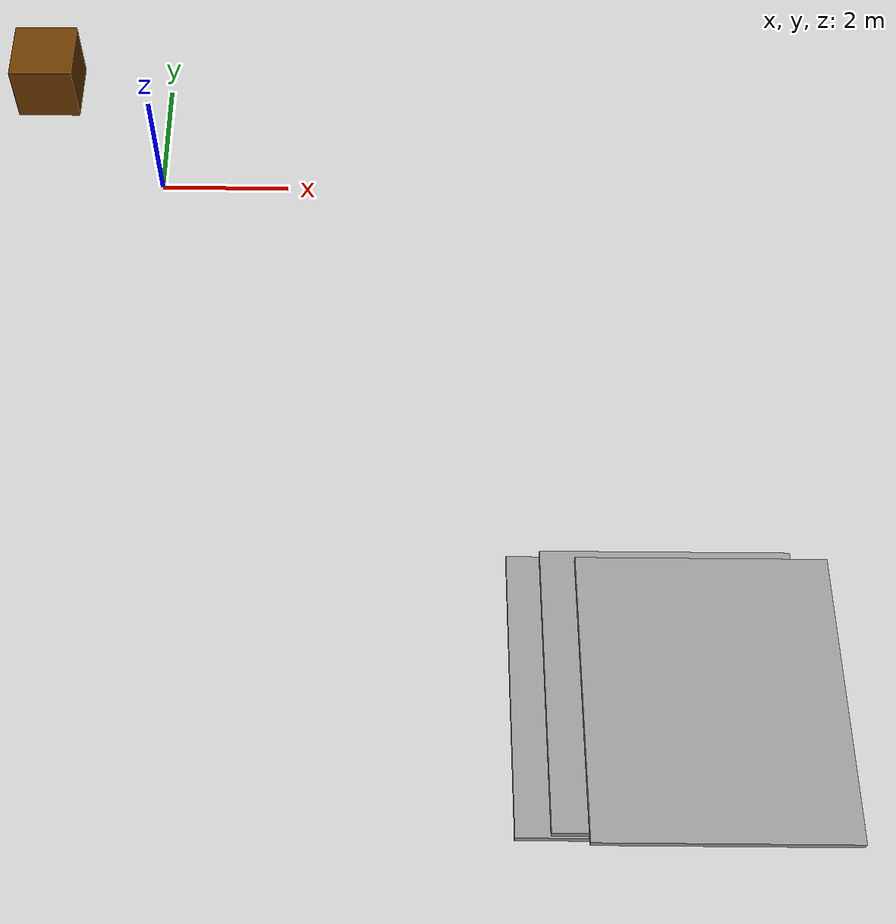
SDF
<sdf version="1.7">
 <world name="default">
  <model name="ground_plane">
   <static>1</static>
   <link name="link">
    <collision name="collision">
     <geometry><plane><normal>0 0 1</normal><size>100 100</size></plane></geometry>
     <surface><friction><ode><mu>100</mu><mu2>50</mu2></ode></friction></surface>
    </collision>
    <visual name="visual">
     <cast_shadows>0</cast_shadows>
     <geometry><plane><normal>0 0 1</normal><size>100 100</size></plane></geometry>
     <material>
      <script><uri>file://media/materials/scripts/gazebo.material</uri><name>Gazebo/Grey</name></script>
     </material>
    </visual>
   </link>
  </model>
  <model name="static_environment">
   <static>1</static>
   <link name="static_box">
    <pose>-2 2 0.5 0 -0 0</pose>
    <collision name="static_box_collision"><geometry><box><size>1 1 1</size></box></geometry></collision>
    <visual name="static_box_visual">
     <geometry><box><size>1 1 1</size></box></geometry>
     <material><ambient>0.2 0.2 0.2 1</ambient><diffuse>0.421 0.225 0 1</diffuse></material>
    </visual>
   </link>
  </model>
  <model name="Untitled_0">
   <link name="link_0">
    <inertial>
     <mass>1.68503</mass>
     <inertia><ixx>2.15864</ixx><ixy>0</ixy><ixz>0</ixz><iyy>1.66859</iyy><iyz>0</iyz><izz>3.82285</izz></inertia>
    </inertial>
    <pose>-0.45963 0.03371 -0.129963 0 -0 0</pose>
    <visual name="visual">
     <geometry><box><size>3.4449 3.91883 0.12488</size></box></geometry>
     <material>
      <lighting>1</lighting>
      <script><uri>file://media/materials/scripts/gazebo.material</uri><name>Gazebo/Grey</name></script>
      <shader type="pixel"/>
     </material>
    </visual>
    <collision name="collision">
     <geometry><box><size>3.4449 3.91883 0.12488</size></box></geometry>
     <surface>
      <friction>
       <ode><mu>1</mu><mu2>1</mu2><fdir1>0 0 0</fdir1><slip1>0</slip1><slip2>0</slip2></ode>
       <torsional>
        <coefficient>1</coefficient>
        <patch_radius>0</patch_radius>
        <surface_radius>0</surface_radius>
        <use_patch_radius>1</use_patch_radius>
        <ode><slip>0</slip></ode>
       </torsional>
      </friction>
      <bounce><restitution_coefficient>0</restitution_coefficient><threshold>1e+06</threshold></bounce>
      <contact>
       <collide_without_contact>0</collide_without_contact>
       <collide_without_contact_bitmask>1</collide_without_contact_bitmask>
       <collide_bitmask>1</collide_bitmask>
       <ode>
        <soft_cfm>0</soft_cfm>
        <soft_erp>0.2</soft_erp>
        <kp>1e+13</kp>
        <kd>1</kd>
        <max_vel>0.01</max_vel>
        <min_depth>0</min_depth>
       </ode>
       <bullet>
        <split_impulse>1</split_impulse>
        <split_impulse_penetration_threshold>-0.01</split_impulse_penetration_threshold>
        <soft_cfm>0</soft_cfm>
        <soft_erp>0.2</soft_erp>
        <kp>1e+13</kp>
        <kd>1</kd>
       </bullet>
      </contact>
     </surface>
    </collision>
   </link>
   <link name="link_0_clone">
    <inertial>
     <mass>1.68503</mass>
     <inertia><ixx>2.15864</ixx><ixy>0</ixy><ixz>0</ixz><iyy>1.66859</iyy><iyz>0</iyz><izz>3.82285</izz></inertia>
    </inertial>
    <pose>-0.00552 0.0581 0.005063 0 -0 0</pose>
    <visual name="visual">
     <geometry><box><size>3.4449 3.91883 0.12488</size></box></geometry>
     <material>
      <lighting>1</lighting>
      <script><uri>file://media/materials/scripts/gazebo.material</uri><name>Gazebo/Grey</name></script>
      <shader type="pixel"/>
     </material>
    </visual>
    <collision name="collision">
     <geometry><box><size>3.4449 3.91883 0.12488</size></box></geometry>
     <surface>
      <friction>
       <ode><mu>1</mu><mu2>1</mu2><fdir1>0 0 0</fdir1><slip1>0</slip1><slip2>0</slip2></ode>
       <torsional>
        <coefficient>1</coefficient>
        <patch_radius>0</patch_radius>
        <surface_radius>0</surface_radius>
        <use_patch_radius>1</use_patch_radius>
        <ode><slip>0</slip></ode>
       </torsional>
      </friction>
      <bounce><restitution_coefficient>0</restitution_coefficient><threshold>1e+06</threshold></bounce>
      <contact>
       <collide_without_contact>0</collide_without_contact>
       <collide_without_contact_bitmask>1</collide_without_contact_bitmask>
       <collide_bitmask>1</collide_bitmask>
       <ode>
        <soft_cfm>0</soft_cfm>
        <soft_erp>0.2</soft_erp>
        <kp>1e+13</kp>
        <kd>1</kd>
        <max_vel>0.01</max_vel>
        <min_depth>0</min_depth>
       </ode>
       <bullet>
        <split_impulse>1</split_impulse>
        <split_impulse_penetration_threshold>-0.01</split_impulse_penetration_threshold>
        <soft_cfm>0</soft_cfm>
        <soft_erp>0.2</soft_erp>
        <kp>1e+13</kp>
        <kd>1</kd>
       </bullet>
      </contact>
     </surface>
    </collision>
   </link>
   <link name="link_0_clone_0">
    <inertial>
     <mass>1.68503</mass>
     <inertia><ixx>2.15864</ixx><ixy>0</ixy><ixz>0</ixz><iyy>1.66859</iyy><iyz>0</iyz><izz>3.82285</izz></inertia>
    </inertial>
    <pose>0.465153 -0.091812 0.1249 0 -0 0</pose>
    <visual name="visual">
     <geometry><box><size>3.4449 3.91883 0.12488</size></box></geometry>
     <material>
      <lighting>1</lighting>
      <script><uri>file://media/materials/scripts/gazebo.material</uri><name>Gazebo/Grey</name></script>
      <shader type="pixel"/>
     </material>
    </visual>
    <collision name="collision">
     <geometry><box><size>3.4449 3.91883 0.12488</size></box></geometry>
     <surface>
      <friction>
       <ode><mu>1</mu><mu2>1</mu2><fdir1>0 0 0</fdir1><slip1>0</slip1><slip2>0</slip2></ode>
       <torsional>
        <coefficient>1</coefficient>
        <patch_radius>0</patch_radius>
        <surface_radius>0</surface_radius>
        <use_patch_radius>1</use_patch_radius>
        <ode><slip>0</slip></ode>
       </torsional>
      </friction>
      <bounce><restitution_coefficient>0</restitution_coefficient><threshold>1e+06</threshold></bounce>
      <contact>
       <collide_without_contact>0</collide_without_contact>
       <collide_without_contact_bitmask>1</collide_without_contact_bitmask>
       <collide_bitmask>1</collide_bitmask>
       <ode>
        <soft_cfm>0</soft_cfm>
        <soft_erp>0.2</soft_erp>
        <kp>1e+13</kp>
        <kd>1</kd>
        <max_vel>0.01</max_vel>
        <min_depth>0</min_depth>
       </ode>
       <bullet>
        <split_impulse>1</split_impulse>
        <split_impulse_penetration_threshold>-0.01</split_impulse_penetration_threshold>
        <soft_cfm>0</soft_cfm>
        <soft_erp>0.2</soft_erp>
        <kp>1e+13</kp>
        <kd>1</kd>
       </bullet>
      </contact>
     </surface>
    </collision>
   </link>
   <static>1</static>
   <pose>7.47538 -8.60314 0.318977 0 -0 0</pose>
  </model>
 </world>
</sdf>
